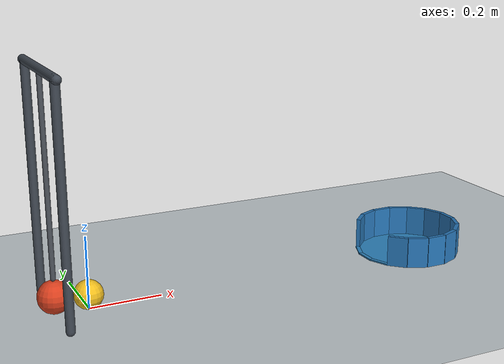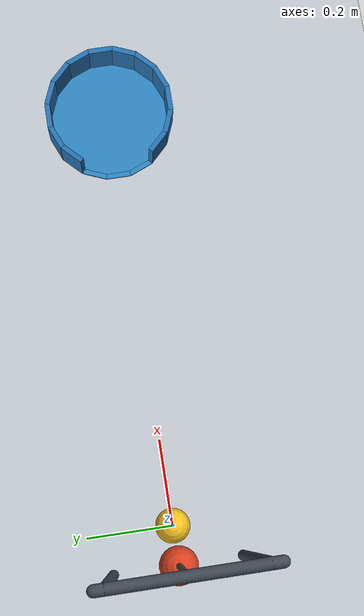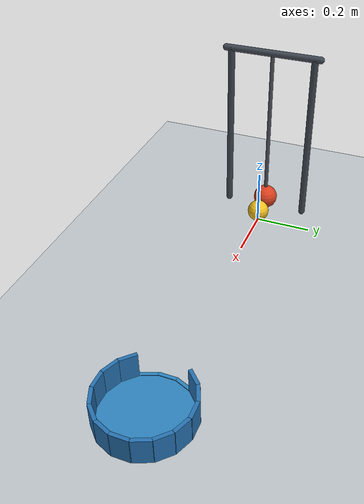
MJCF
<mujoco model="pendulum_ball_cup">
  <compiler angle="radian" inertiafromgeom="true"/>
  <option timestep="0.002" gravity="0 0 -9.81" integrator="implicitfast" cone="elliptic" iterations="100"/>
  <size nconmax="200" njmax="1000"/>

  <visual>
    <global azimuth="125" elevation="-25"/>
    <headlight ambient="0.35 0.35 0.35" diffuse="0.7 0.7 0.7" specular="0.2 0.2 0.2"/>
  </visual>

  <worldbody>
    <light name="overhead" pos="0.5 -1 3" dir="0 0 -1" diffuse="0.8 0.8 0.8"/>
    <camera name="overview" pos="1.7 -2.8 1.6" xyaxes="0.925 0.380 0 -0.165 0.402 0.901"/>

    <geom name="floor" type="plane" pos="0 0 0" size="3 2 0.1" condim="6" friction="0.35 0.001 0.00001" solref="0.008 1" rgba="0.75 0.78 0.80 1"/>

    <body name="support">
      <geom name="support_left" type="capsule" fromto="-0.09 -0.15 0.015 -0.09 -0.15 0.64" size="0.012" contype="0" conaffinity="0" rgba="0.25 0.28 0.32 1"/>
      <geom name="support_right" type="capsule" fromto="-0.09 0.15 0.015 -0.09 0.15 0.64" size="0.012" contype="0" conaffinity="0" rgba="0.25 0.28 0.32 1"/>
      <geom name="support_axle" type="capsule" fromto="-0.09 -0.17 0.64 -0.09 0.17 0.64" size="0.012" contype="0" conaffinity="0" rgba="0.25 0.28 0.32 1"/>
    </body>

    <!-- The raised initial angle supplies the strike energy through gravity. -->
    <body name="pendulum" pos="-0.09 0 0.64">
      <joint name="pendulum_hinge" type="hinge" axis="0 1 0" damping="0.0001"/>
      <geom name="pendulum_rod" type="capsule" fromto="0 0 0 0 0 -0.54" size="0.007" mass="0.003" friction="0.25 0.001 0.00001" solref="0.008 1" rgba="0.30 0.32 0.35 1"/>
      <geom name="pendulum_bob" type="sphere" pos="0 0 -0.59" size="0.045" mass="0.04" friction="0.25 0.001 0.00001" solref="0.008 1" rgba="0.85 0.25 0.12 1"/>
    </body>

    <body name="ball" pos="0 0 0.04">
      <freejoint name="ball_free"/>
      <geom name="ball" type="sphere" size="0.04" mass="0.06" condim="6" friction="0.35 0.001 0.00001" solref="0.008 1" rgba="0.95 0.75 0.12 1"/>
    </body>

    <body name="cup" pos="1 0 0">
      <geom name="cup_bottom" type="cylinder" pos="0 0 0.001" size="0.152 0.001" condim="6" friction="0.7 0.005 0.0025" solref="0.008 1" rgba="0.18 0.52 0.75 1"/>

      <geom name="cup_wall_00" type="box" pos="0.146 0 0.045" size="0.006 0.0295 0.045" euler="0 0 0" friction="0.7 0.005 0.00001" solref="0.008 1" rgba="0.15 0.45 0.70 1"/>
      <geom name="cup_wall_01" type="box" pos="0.134886 0.055872 0.045" size="0.006 0.0295 0.045" euler="0 0 0.392699" friction="0.7 0.005 0.00001" solref="0.008 1" rgba="0.15 0.45 0.70 1"/>
      <geom name="cup_wall_02" type="box" pos="0.103238 0.103238 0.045" size="0.006 0.0295 0.045" euler="0 0 0.785398" friction="0.7 0.005 0.00001" solref="0.008 1" rgba="0.15 0.45 0.70 1"/>
      <geom name="cup_wall_03" type="box" pos="0.055872 0.134886 0.045" size="0.006 0.0295 0.045" euler="0 0 1.178097" friction="0.7 0.005 0.00001" solref="0.008 1" rgba="0.15 0.45 0.70 1"/>
      <geom name="cup_wall_04" type="box" pos="0 0.146 0.045" size="0.006 0.0295 0.045" euler="0 0 1.570796" friction="0.7 0.005 0.00001" solref="0.008 1" rgba="0.15 0.45 0.70 1"/>
      <geom name="cup_wall_05" type="box" pos="-0.055872 0.134886 0.045" size="0.006 0.0295 0.045" euler="0 0 1.963495" friction="0.7 0.005 0.00001" solref="0.008 1" rgba="0.15 0.45 0.70 1"/>
      <geom name="cup_wall_06" type="box" pos="-0.103238 0.103238 0.045" size="0.006 0.0295 0.045" euler="0 0 2.356194" friction="0.7 0.005 0.00001" solref="0.008 1" rgba="0.15 0.45 0.70 1"/>

      <geom name="cup_entry_07" type="box" pos="-0.134886 0.055872 0.002" size="0.006 0.0295 0.002" euler="0 0 2.748894" condim="6" friction="0.6 0.002 0.00001" solref="0.008 1" rgba="0.18 0.52 0.75 1"/>
      <geom name="cup_entry_08" type="box" pos="-0.146 0 0.002" size="0.006 0.0295 0.002" euler="0 0 3.141593" condim="6" friction="0.6 0.002 0.00001" solref="0.008 1" rgba="0.18 0.52 0.75 1"/>
      <geom name="cup_entry_09" type="box" pos="-0.134886 -0.055872 0.002" size="0.006 0.0295 0.002" euler="0 0 3.534292" condim="6" friction="0.6 0.002 0.00001" solref="0.008 1" rgba="0.18 0.52 0.75 1"/>

      <geom name="cup_wall_10" type="box" pos="-0.103238 -0.103238 0.045" size="0.006 0.0295 0.045" euler="0 0 3.926991" friction="0.7 0.005 0.00001" solref="0.008 1" rgba="0.15 0.45 0.70 1"/>
      <geom name="cup_wall_11" type="box" pos="-0.055872 -0.134886 0.045" size="0.006 0.0295 0.045" euler="0 0 4.319690" friction="0.7 0.005 0.00001" solref="0.008 1" rgba="0.15 0.45 0.70 1"/>
      <geom name="cup_wall_12" type="box" pos="0 -0.146 0.045" size="0.006 0.0295 0.045" euler="0 0 4.712389" friction="0.7 0.005 0.00001" solref="0.008 1" rgba="0.15 0.45 0.70 1"/>
      <geom name="cup_wall_13" type="box" pos="0.055872 -0.134886 0.045" size="0.006 0.0295 0.045" euler="0 0 5.105088" friction="0.7 0.005 0.00001" solref="0.008 1" rgba="0.15 0.45 0.70 1"/>
      <geom name="cup_wall_14" type="box" pos="0.103238 -0.103238 0.045" size="0.006 0.0295 0.045" euler="0 0 5.497787" friction="0.7 0.005 0.00001" solref="0.008 1" rgba="0.15 0.45 0.70 1"/>
      <geom name="cup_wall_15" type="box" pos="0.134886 -0.055872 0.045" size="0.006 0.0295 0.045" euler="0 0 5.890486" friction="0.7 0.005 0.00001" solref="0.008 1" rgba="0.15 0.45 0.70 1"/>
    </body>
  </worldbody>

  <keyframe>
    <key name="start" qpos="0.55 0 0 0.04 1 0 0 0" qvel="0 0 0 0 0 0 0"/>
  </keyframe>
</mujoco>
